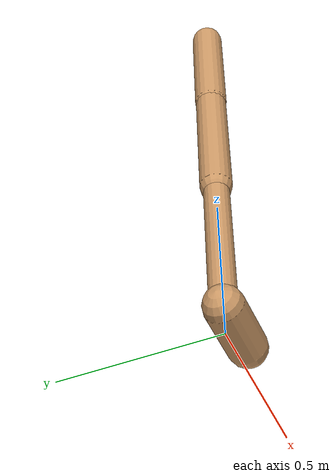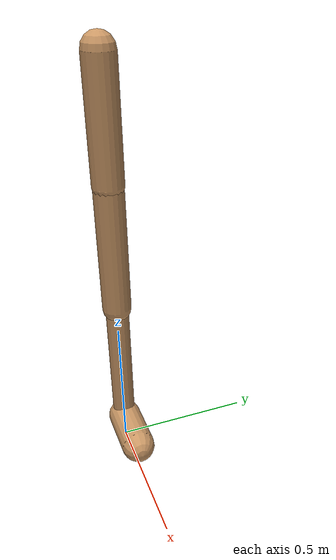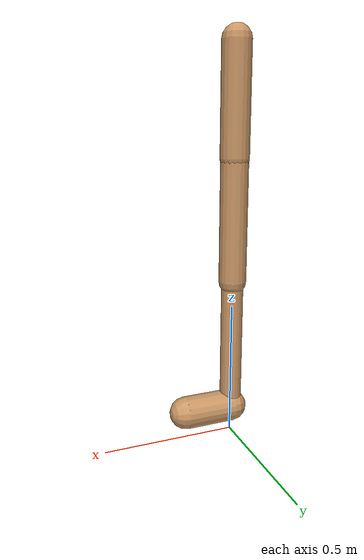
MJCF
<mujoco model="walker2d">
  <compiler angle="degree" coordinate="global" inertiafromgeom="true" />
  <default>
    <joint armature="0.01" damping=".1" limited="true" />
    <geom conaffinity="0" condim="3" contype="1" density="1000" friction="0.8 .1 .1" rgba="0.8 0.6 .4 1" />
  </default>
  <option integrator="RK4" timestep="0.002" />
  <worldbody>

    <body name="torso" pos="0 0 -0.0028361130583406903">
      <joint armature="0" axis="1 0 0" damping="0" limited="false" name="ignorex" pos="0 0 0" stiffness="0" type="slide" />
      <joint armature="0" axis="0 0 1" damping="0" limited="false" name="ignorez" pos="0 0 0" ref="1.25" stiffness="0" type="slide" />
      <joint armature="0" axis="0 1 0" damping="0" limited="false" name="ignorey" pos="0 0 0" stiffness="0" type="hinge" />
      <geom fromto="0 0 1.45 0 0 1.05" name="torso_geom" size="0.053539994312290944" type="capsule" />
      <body name="thigh">
        <joint axis="0 -1 0" name="thigh_joint" pos="0 0 1.05" range="-150 0" type="hinge" />
        <geom fromto="0.0 0.0 1.05 0.0 0.0 0.6013434219750035" name="thigh_geom" size="0.05125472762766067" type="capsule" />
        <body name="leg" pos="0.0 0.0 0.0013434219750034782">
          <joint axis="0 -1 0" name="leg_joint" pos="0 0 0.6" range="-150 0" type="hinge" />
          <geom fromto="0.0 0.0 0.6 0.0 0.0 0.10149269108333721" name="leg_geom" size="0.04100378210212854" type="capsule" />
          <body name="foot" pos="0.0 0.0 0.0014926910833372026">
            <joint axis="0 -1 0" name="foot_joint" pos="0 0 0.1" range="-45 45" type="hinge" />
            <geom fromto="0.0 0.0 0.1 0.18603953509615284 0.0 0.1" name="foot_geom" size="0.06051683621438654" type="capsule" />
          </body>
        </body>
      </body>

      <body name="thigh_left">
        <joint axis="0 -1 0" name="thigh_left_joint" pos="0 0 1.05" range="-150 0" type="hinge" />
        <geom fromto="0.0 0.0 1.05 0.0 0.0 0.6013434219750035" name="thigh_left_geom" rgba=".7 .3 .6 1" size="0.05125472762766067" type="capsule" />
        <body name="leg_left" pos="0.0 0.0 0.0013434219750034782">
          <joint axis="0 -1 0" name="leg_left_joint" pos="0 0 0.6" range="-150 0" type="hinge" />
          <geom fromto="0.0 0.0 0.6 0.0 0.0 0.10149269108333721" name="leg_left_geom" rgba=".7 .3 .6 1" size="0.04100378210212854" type="capsule" />
          <body name="foot_left" pos="0.0 0.0 0.0014926910833372026">
            <joint axis="0 -1 0" name="foot_left_joint" pos="0 0 0.1" range="-45 45" type="hinge" />
            <geom fromto="0.0 0.0 0.1 0.18603953509615284 0.0 0.1" name="foot_left_geom" rgba=".7 .3 .6 1" size="0.06051683621438654" type="capsule" />
          </body>
        </body>
      </body>
    </body>
  </worldbody>
  <actuator>

    <motor ctrllimited="true" ctrlrange="-1.0 1.0" gear="100" joint="thigh_joint" />
    <motor ctrllimited="true" ctrlrange="-1.0 1.0" gear="100" joint="leg_joint" />
    <motor ctrllimited="true" ctrlrange="-1.0 1.0" gear="100" joint="foot_joint" />
    <motor ctrllimited="true" ctrlrange="-1.0 1.0" gear="100" joint="thigh_left_joint" />
    <motor ctrllimited="true" ctrlrange="-1.0 1.0" gear="100" joint="leg_left_joint" />
    <motor ctrllimited="true" ctrlrange="-1.0 1.0" gear="100" joint="foot_left_joint" />

  </actuator>
</mujoco>
